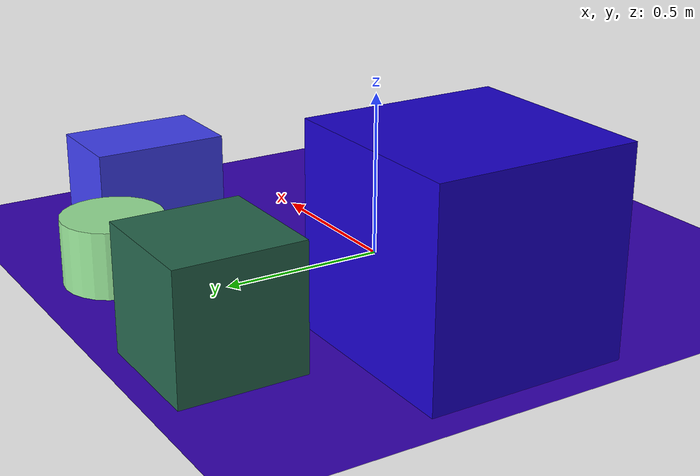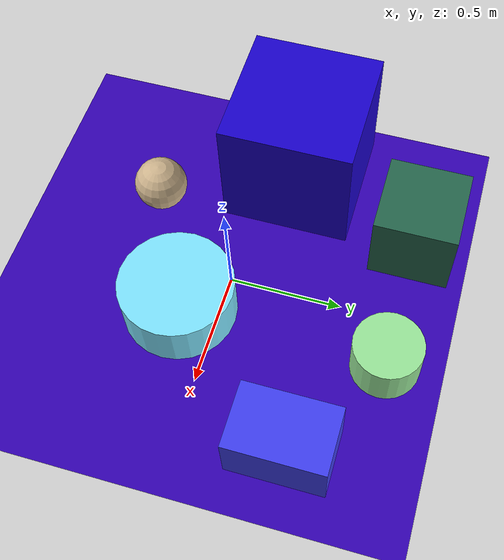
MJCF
<mujoco>
   <asset>
<texture type="skybox" builtin="gradient" rgb1="0.7 1.0 0.5" rgb2="1.0 0.7 0.8" width="256" height="256"/>
<texture name="flat_0" builtin="flat" rgb1="0.5 0.9 1.0" rgb2="0.5 0.9 1.0"  width="200" height="200"/>
<texture name="gradient_1" builtin="gradient" rgb1="0.8 0.4 0.2" rgb2="0.8 1.0 0.9" width="200" height="200"/>
<texture name="flat_2" builtin="flat" rgb1="0.1 0.0 0.8" rgb2="0.1 0.0 0.8"  width="200" height="200"/>
<texture name="checker_3" builtin="checker" type="2d" rgb1="0.0 0.6 0.2" rgb2="0.3 0.2 0.4" width="200" height="200"/>
<texture name="flat_4" builtin="flat" rgb1="0.6 0.9 0.6" rgb2="0.6 0.9 0.6"  width="200" height="200"/>
<texture name="checker_5" builtin="checker" type="2d" rgb1="0.2 0.5 0.9" rgb2="0.3 0.0 1.0" width="200" height="200"/><material name="flat_0_mat" reflectance="0" texture="flat_0" texuniform="true"/>
<material name="gradient_1_mat" reflectance="0" texture="gradient_1" texuniform="true"/>
<material name="flat_2_mat" reflectance="0" texture="flat_2" texuniform="true"/>
<material name="checker_3_mat" reflectance="0" texrepeat="3 3" texture="checker_3" texuniform="false" />
<material name="flat_4_mat" reflectance="0" texture="flat_4" texuniform="true"/>
<material name="checker_5_mat" reflectance="0" texrepeat="10 10" texture="checker_5" texuniform="false" />
   </asset>

   <worldbody>
      <light diffuse=".9 .9 .9" pos="0 0 3" dir="0 0 -1"/>
     <geom type="plane" size="1 1 0.1" rgba="0.2 0.0 0.7 1"/>
<geom type="cylinder" pos="0.19 -0.17 0.11" size="0.25 0.11 0.11" material="flat_0_mat" />
<geom type="sphere" pos="-0.34 -0.44 0.12" size="0.12 0.12 0.12" material="gradient_1_mat" />
<geom type="box" pos="-0.63 0.15 0.29" size="0.29 0.29 0.29" material="flat_2_mat" />
<geom type="box" pos="-0.4 0.75 0.18" size="0.18 0.18 0.18" material="checker_3_mat" />
<geom type="cylinder" pos="0.22 0.75 0.1" size="0.15 0.1 0.1" material="flat_4_mat" />
<geom type="box" pos="0.69 0.44 0.13" size="0.14 0.21 0.13" material="checker_5_mat" /><camera euler="60 0 180" fovy="60" name="camera_a" pos="0 -1.5 1"></camera>   </worldbody>
</mujoco>
